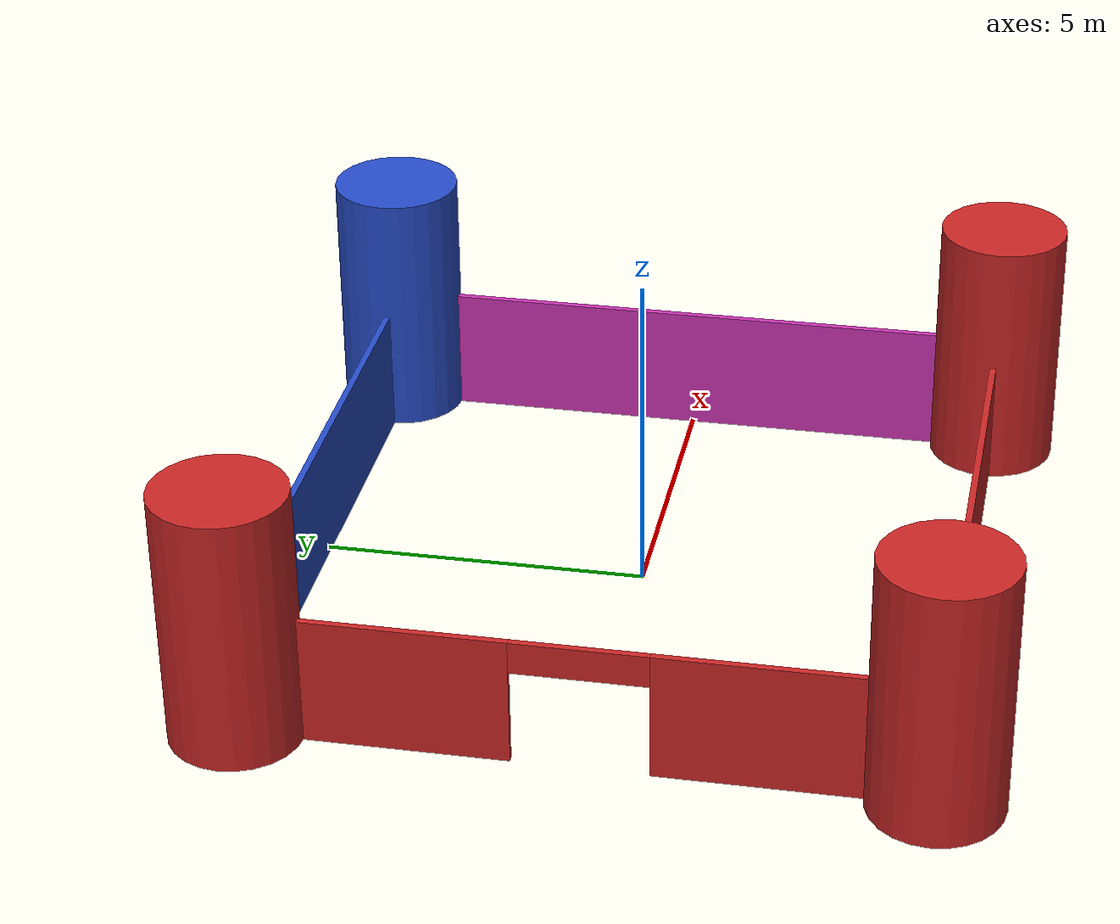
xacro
<?xml version="1.0"?>
<robot xmlns:xacro="http://www.ros.org/wiki/xacro">

    <xacro:include filename="colours.xacro" />
    <xacro:include filename="inertial.xacro" />

    <link name="base">
    </link>

    <joint name="north_wall" type="fixed">
        <parent link="base"/>
        <child link="north_wall_link"/>
        <origin xyz="0 5 1"/>
    </joint>

    <link name="north_wall_link">
        <visual>
            <origin xyz="0 0 0"/>
            <geometry>
                <box size="10 0.1 2"/>
            </geometry>
            <material name="blue"/>
        </visual>
        <collision>
            <origin xyz="0 0 0" rpy="0 0 0"/>
            <geometry>
                <box size="10 0.1 2"/>
            </geometry>
        </collision>
        <xacro:inertial_box mass="1" x="0" y="0" z="0">
            <origin xyz="0 5 1" rpy="0 0 0"/>
        </xacro:inertial_box>
    </link>

    <joint name="south_wall" type="fixed">
        <parent link="base"/>
        <child link="south_wall_link"/>
        <origin xyz="0 -5 1"/>
    </joint>

    <link name="south_wall_link">
        <visual>
            <origin xyz="0 0 0"/>
            <geometry>
                <box size="10 0.1 2"/>
            </geometry>
            <material name="red"/>
        </visual>
        <collision>
            <origin xyz="0 0 0" rpy="0 0 0"/>
            <geometry>
                <box size="10 0.1 2"/>
            </geometry>
        </collision>
        <xacro:inertial_box mass="1" x="0" y="0" z="0">
            <origin xyz="0 -5 1" rpy="0 0 0"/>
        </xacro:inertial_box>
    </link>

    <joint name="east_wall" type="fixed">
        <parent link="base"/>
        <child link="east_wall_link"/>
        <origin xyz="5 0 1" rpy="0 0 ${pi/2}"/>
    </joint>

    <link name="east_wall_link">
        <visual>
            <origin xyz="0 0 0"/>
            <geometry>
                <box size="10 0.1 2"/>
            </geometry>
            <material name="magenta"/>
        </visual>
        <collision>
            <origin xyz="0 0 0" rpy="0 0 0"/>
            <geometry>
                <box size="10 0.1 2"/>
            </geometry>
        </collision>
        <xacro:inertial_box mass="1" x="0" y="0" z="0">
            <origin xyz="5 0 1" rpy="0 0 0"/>
        </xacro:inertial_box>
    </link>

    <joint name="west_wall1" type="fixed">
        <parent link="base"/>
        <child link="west_wall1_link"/>
        <origin xyz="-5 3 1" rpy="0 0 ${pi/2}"/>
    </joint>

    <link name="west_wall1_link">
        <visual>
            <origin xyz="0 0 0"/>
            <geometry>
                <box size="4 0.1 2"/>
            </geometry>
            <material name="red"/>
        </visual>
        <collision>
            <origin xyz="0 0 0" rpy="0 0 0"/>
            <geometry>
                <box size="4 0.1 2"/>
            </geometry>
        </collision>
        <xacro:inertial_box mass="1" x="0" y="0" z="0">
            <origin xyz="-5 3 1" rpy="0 0 0"/>
        </xacro:inertial_box>
    </link>

    <joint name="west_wall2" type="fixed">
        <parent link="base"/>
        <child link="west_wall2_link"/>
        <origin xyz="-5 -3 1" rpy="0 0 ${pi/2}"/>
    </joint>

    <link name="west_wall2_link">
        <visual>
            <origin xyz="0 0 0"/>
            <geometry>
                <box size="4 0.1 2"/>
            </geometry>
            <material name="red"/>
        </visual>
        <collision>
            <origin xyz="0 0 0" rpy="0 0 0"/>
            <geometry>
                <box size="4 0.1 2"/>
            </geometry>
        </collision>
        <xacro:inertial_box mass="1" x="0" y="0" z="0">
            <origin xyz="-5 -3 1" rpy="0 0 0"/>
        </xacro:inertial_box>
    </link>

    <joint name="door" type="fixed">
        <parent link="base"/>
        <child link="door_link"/>
        <origin xyz="-5 0 1.75" rpy="0 0 ${pi/2}"/>
    </joint>

    <link name="door_link">
        <visual>
            <origin xyz="0 0 0"/>
            <geometry>
                <box size="2 0.1 0.5"/>
            </geometry>
            <material name="red"/>
        </visual>
        <collision>
            <origin xyz="0 0 0" rpy="0 0 0"/>
            <geometry>
                <box size="2 0.1 2"/>
            </geometry>
        </collision>
        <xacro:inertial_box mass="1" x="0" y="0" z="0">
            <origin xyz="-5 0 1.75" rpy="0 0 0"/>
        </xacro:inertial_box>
    </link>

    <joint name="NE_tower" type="fixed">
        <parent link="base"/>
        <child link="NE_tower_link"/>
        <origin xyz="5 5 2"/>
    </joint>

    <link name="NE_tower_link">
        <visual>
            <geometry>
            <cylinder length="4" radius="1"/>
            </geometry>
            <material name="blue"/>
        </visual>
        <collision>
            <geometry>
            <cylinder length="4" radius="1"/>
            </geometry>
        </collision>
        <xacro:inertial_cylinder mass="1" length="4" radius="1">
            <origin xyz="5 5 2" rpy="0 0 0"/>
        </xacro:inertial_cylinder>
    </link>

    <joint name="NW_tower" type="fixed">
        <parent link="base"/>
        <child link="NW_tower_link"/>
        <origin xyz="-5 5 2"/>
    </joint>

    <link name="NW_tower_link">
        <visual>
            <geometry>
            <cylinder length="4" radius="1"/>
            </geometry>
            <material name="red"/>
        </visual>
        <collision>
            <geometry>
            <cylinder length="4" radius="1"/>
            </geometry>
        </collision>
        <xacro:inertial_cylinder mass="1" length="4" radius="1">
            <origin xyz="-5 5 0" rpy="0 0 0"/>
        </xacro:inertial_cylinder>
    </link>

    <joint name="SE_tower" type="fixed">
        <parent link="base"/>
        <child link="SE_tower_link"/>
        <origin xyz="5 -5 2"/>
    </joint>

    <link name="SE_tower_link">
        <visual>
            <geometry>
            <cylinder length="4" radius="1"/>
            </geometry>
            <material name="red"/>
        </visual>
        <collision>
            <geometry>
            <cylinder length="4" radius="1"/>
            </geometry>
        </collision>
        <xacro:inertial_cylinder mass="1" length="4" radius="1">
            <origin xyz="5 -5 0" rpy="0 0 0"/>
        </xacro:inertial_cylinder>
    </link>

    <joint name="SW_tower" type="fixed">
        <parent link="base"/>
        <child link="SW_tower_link"/>
        <origin xyz="-5 -5 2"/>
    </joint>

    <link name="SW_tower_link">
        <visual>
            <geometry>
            <cylinder length="4" radius="1"/>
            </geometry>
            <material name="red"/>
        </visual>
        <collision>
            <geometry>
            <cylinder length="4" radius="1"/>
            </geometry>
        </collision>
        <xacro:inertial_cylinder mass="1" length="4" radius="1">
            <origin xyz="-5 -5 0" rpy="0 0 0"/>
        </xacro:inertial_cylinder>
    </link>
</robot>

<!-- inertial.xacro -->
<robot xmlns:xacro="http://www.ros.org/wiki/xacro" >
    <!-- Specify some standard inertial calculations
         https://en.wikipedia.org/wiki/List_of_moments_of_inertia
         These make use of xacro's mathematical functionality -->

    <!-- Sphere -->
    <xacro:macro name="inertial_sphere" params="mass radius *origin">
        <inertial>
            <xacro:insert_block name="origin"/>
            <mass value="${mass}" />
            <inertia ixx="${(2/5) * mass * (radius*radius)}" ixy="0.0" ixz="0.0"
                    iyy="${(2/5) * mass * (radius*radius)}" iyz="0.0"
                    izz="${(2/5) * mass * (radius*radius)}" />
        </inertial>
    </xacro:macro>

    <!-- Box -->
    <xacro:macro name="inertial_box" params="mass x y z *origin">
        <inertial>
            <xacro:insert_block name="origin"/>
            <mass value="${mass}" />
            <inertia ixx="${(1/12) * mass * (y*y+z*z)}" ixy="0.0" ixz="0.0"
                    iyy="${(1/12) * mass * (x*x+z*z)}" iyz="0.0"
                    izz="${(1/12) * mass * (x*x+y*y)}" />
        </inertial>
    </xacro:macro>

    <!-- Cyclinder-->
    <xacro:macro name="inertial_cylinder" params="mass length radius *origin">
        <inertial>
            <xacro:insert_block name="origin"/>
            <mass value="${mass}" />
            <inertia ixx="${(1/12) * mass * (3*radius*radius + length*length)}"
                ixy="0.0" ixz="0.0"
                iyy="${(1/12) * mass * (3*radius*radius + length*length)}"
                iyz="0.0" izz="${(1/2) * mass * (radius*radius)}" />
        </inertial>
    </xacro:macro>
</robot>
